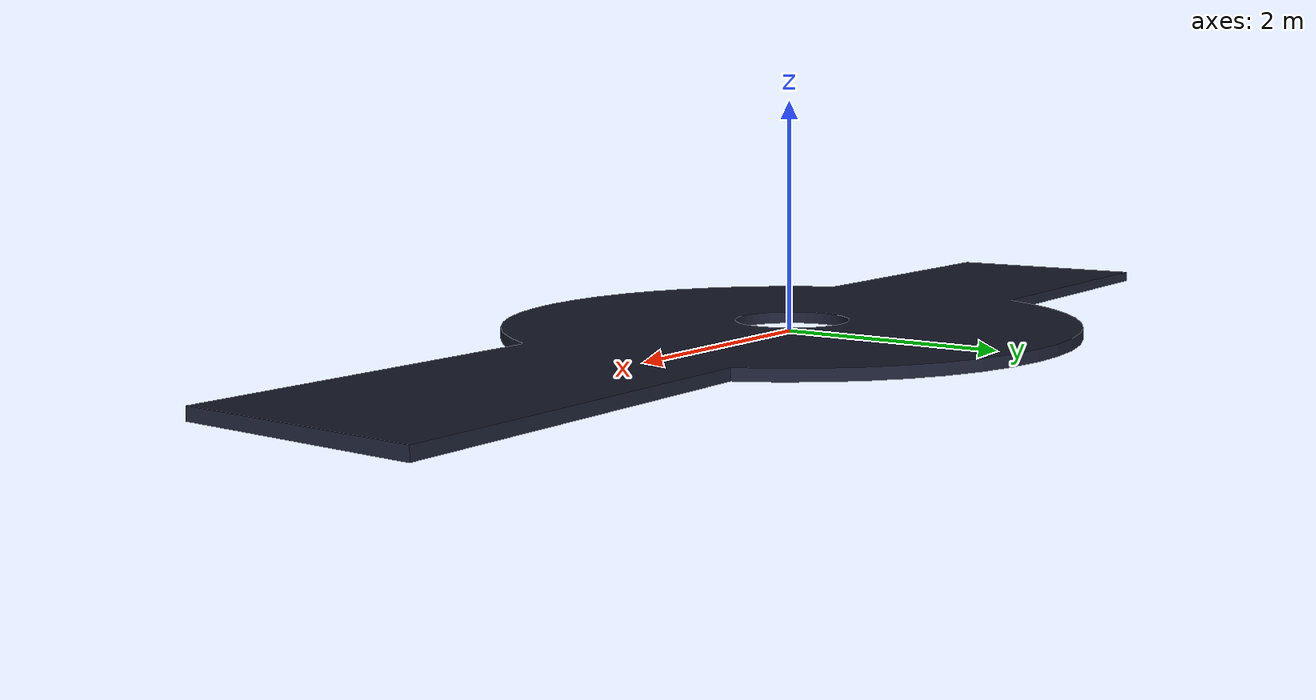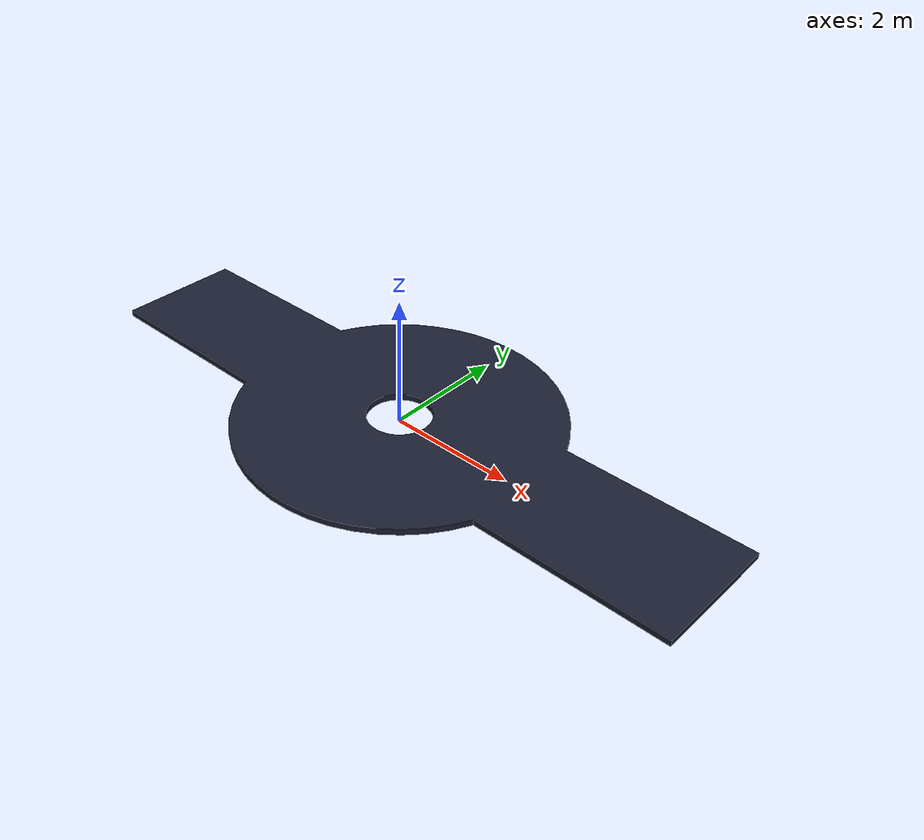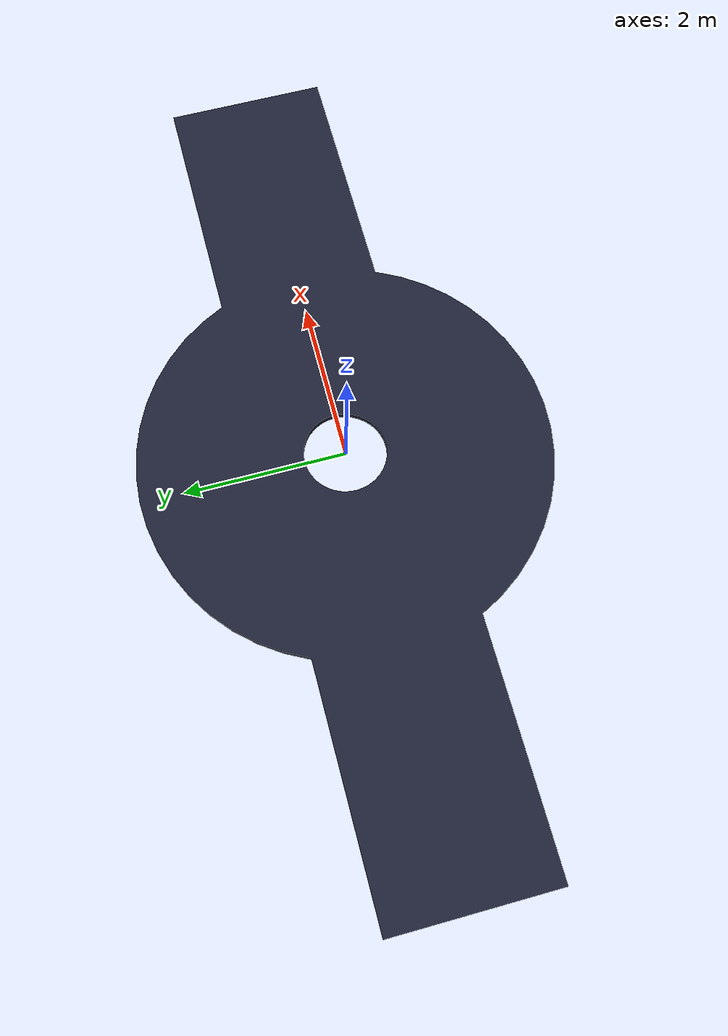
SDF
<?xml version="1.0" ?>
<sdf version="1.5">
  <model name="main_track">
    <static>true</static>
    <link name="link">
      <collision name="collision">
        <geometry>
          <mesh>
            <scale>1.0 1.0 1.0</scale>
            <uri>model://main_track/mesh/main_track.dae</uri>
          </mesh>
        </geometry>
      </collision>
      <visual name="visual">
        <geometry>
          <mesh>
            <scale>1.0 1.0 1.0</scale>
            <uri>model://main_track/mesh/main_track.dae</uri>
          </mesh>
        </geometry>
      </visual>
    </link>
  </model>
</sdf>
